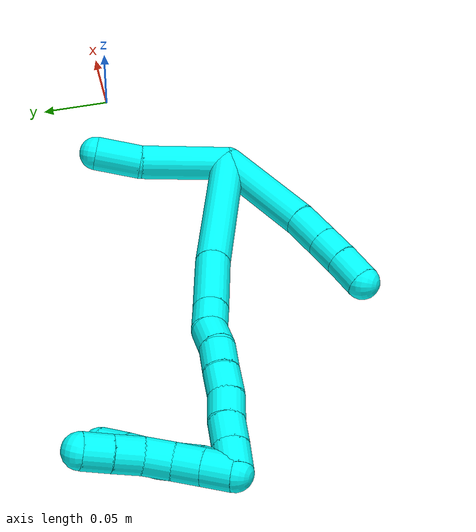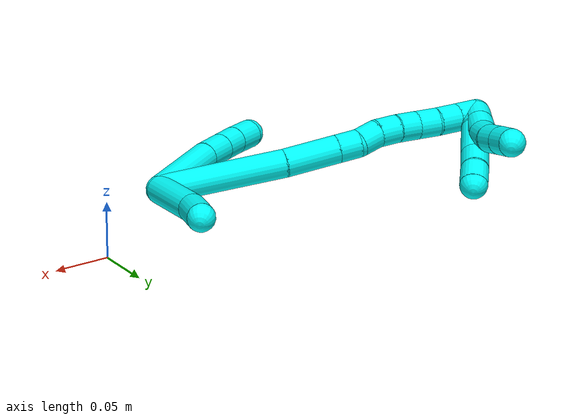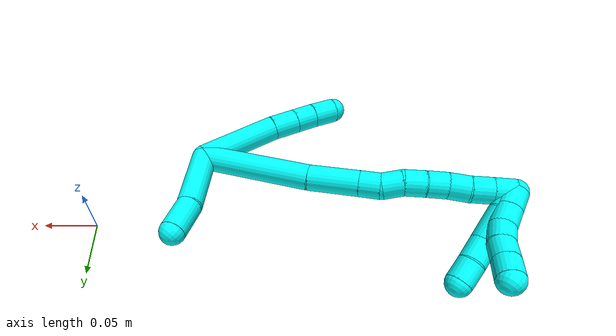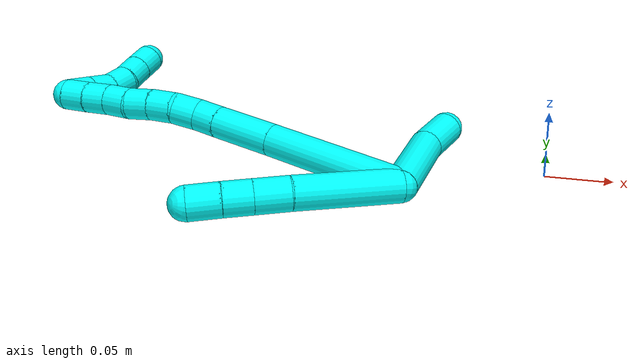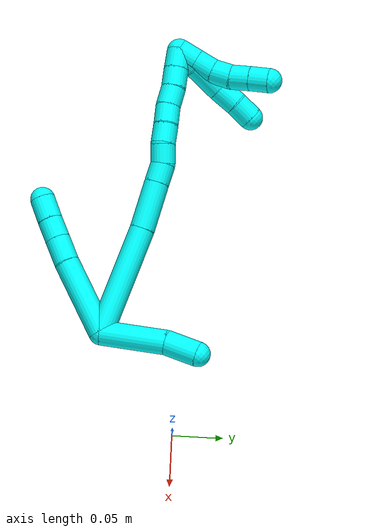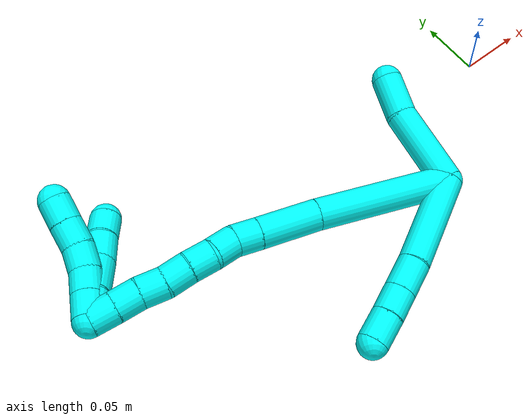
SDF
<sdf version="1.7">
 <world name="default">
  <model name="3">
   <static>0</static>
   <link name="3">
    <collision name="collision-cylinder-e_1_2_8">
     <pose>-0.01582 -0.005065 0.035793 0.140569 -0.412529 -0.029459</pose>
     <geometry><cylinder><radius>0.0125</radius><length>0.078919</length></cylinder></geometry>
     <surface>
      <friction><ode><mu>1.16</mu><mu2>1.16</mu2><slip1>0</slip1><slip2>0</slip2></ode></friction>
      <contact><ode><kp>1e+06</kp><kd>1</kd><max_vel>0</max_vel><min_depth>0.001</min_depth></ode></contact>
     </surface>
    </collision>
    <visual name="visual-cylinder-e_1_2_8">
     <pose>-0.01582 -0.005065 0.035793 0.140569 -0.412529 -0.029459</pose>
     <geometry><cylinder><radius>0.0125</radius><length>0.078919</length></cylinder></geometry>
     <material><ambient>0.003922 1 0.996078 1</ambient></material>
    </visual>
    <collision name="collision-cylinder-e_2_8_9">
     <pose>-0.037803 -0.01228 0.08279 0.189602 -0.495248 -0.048069</pose>
     <geometry><cylinder><radius>0.0125</radius><length>0.025934</length></cylinder></geometry>
     <surface>
      <friction><ode><mu>1.16</mu><mu2>1.16</mu2><slip1>0</slip1><slip2>0</slip2></ode></friction>
      <contact><ode><kp>1e+06</kp><kd>1</kd><max_vel>0</max_vel><min_depth>0.001</min_depth></ode></contact>
     </surface>
    </collision>
    <visual name="visual-cylinder-e_2_8_9">
     <pose>-0.037803 -0.01228 0.08279 0.189602 -0.495248 -0.048069</pose>
     <geometry><cylinder><radius>0.0125</radius><length>0.025934</length></cylinder></geometry>
     <material><ambient>0.003922 1 0.996078 1</ambient></material>
    </visual>
    <collision name="collision-cylinder-e_3_9_10">
     <pose>-0.049012 -0.016181 0.103159 0.188781 -0.495754 -0.04791</pose>
     <geometry><cylinder><radius>0.0125</radius><length>0.021215</length></cylinder></geometry>
     <surface>
      <friction><ode><mu>1.16</mu><mu2>1.16</mu2><slip1>0</slip1><slip2>0</slip2></ode></friction>
      <contact><ode><kp>1e+06</kp><kd>1</kd><max_vel>0</max_vel><min_depth>0.001</min_depth></ode></contact>
     </surface>
    </collision>
    <visual name="visual-cylinder-e_3_9_10">
     <pose>-0.049012 -0.016181 0.103159 0.188781 -0.495754 -0.04791</pose>
     <geometry><cylinder><radius>0.0125</radius><length>0.021215</length></cylinder></geometry>
     <material><ambient>0.003922 1 0.996078 1</ambient></material>
    </visual>
    <collision name="collision-cylinder-e_4_10_6">
     <pose>-0.060108 -0.020162 0.122403 0.217789 -0.530161 -0.05934</pose>
     <geometry><cylinder><radius>0.0125</radius><length>0.023933</length></cylinder></geometry>
     <surface>
      <friction><ode><mu>1.16</mu><mu2>1.16</mu2><slip1>0</slip1><slip2>0</slip2></ode></friction>
      <contact><ode><kp>1e+06</kp><kd>1</kd><max_vel>0</max_vel><min_depth>0.001</min_depth></ode></contact>
     </surface>
    </collision>
    <visual name="visual-cylinder-e_4_10_6">
     <pose>-0.060108 -0.020162 0.122403 0.217789 -0.530161 -0.05934</pose>
     <geometry><cylinder><radius>0.0125</radius><length>0.023933</length></cylinder></geometry>
     <material><ambient>0.003922 1 0.996078 1</ambient></material>
    </visual>
    <collision name="collision-cylinder-e_1_2_11">
     <pose>-0.015951 0.011433 -0.026572 -2.73528 -0.503921 1.79187</pose>
     <geometry><cylinder><radius>0.0125</radius><length>0.066068</length></cylinder></geometry>
     <surface>
      <friction><ode><mu>1.16</mu><mu2>1.16</mu2><slip1>0</slip1><slip2>0</slip2></ode></friction>
      <contact><ode><kp>1e+06</kp><kd>1</kd><max_vel>0</max_vel><min_depth>0.001</min_depth></ode></contact>
     </surface>
    </collision>
    <visual name="visual-cylinder-e_1_2_11">
     <pose>-0.015951 0.011433 -0.026572 -2.73528 -0.503921 1.79187</pose>
     <geometry><cylinder><radius>0.0125</radius><length>0.066068</length></cylinder></geometry>
     <material><ambient>0.003922 1 0.996078 1</ambient></material>
    </visual>
    <collision name="collision-cylinder-e_2_11_5">
     <pose>-0.036719 0.029251 -0.068108 -2.73827 -0.287882 1.23344</pose>
     <geometry><cylinder><radius>0.0125</radius><length>0.033932</length></cylinder></geometry>
     <surface>
      <friction><ode><mu>1.16</mu><mu2>1.16</mu2><slip1>0</slip1><slip2>0</slip2></ode></friction>
      <contact><ode><kp>1e+06</kp><kd>1</kd><max_vel>0</max_vel><min_depth>0.001</min_depth></ode></contact>
     </surface>
    </collision>
    <visual name="visual-cylinder-e_2_11_5">
     <pose>-0.036719 0.029251 -0.068108 -2.73827 -0.287882 1.23344</pose>
     <geometry><cylinder><radius>0.0125</radius><length>0.033932</length></cylinder></geometry>
     <material><ambient>0.003922 1 0.996078 1</ambient></material>
    </visual>
    <collision name="collision-cylinder-e_1_2_12">
     <pose>-0.051444 0.00751 0.019549 -0.36679 -1.1842 0.248226</pose>
     <geometry><cylinder><radius>0.0125</radius><length>0.111087</length></cylinder></geometry>
     <surface>
      <friction><ode><mu>1.16</mu><mu2>1.16</mu2><slip1>0</slip1><slip2>0</slip2></ode></friction>
      <contact><ode><kp>1e+06</kp><kd>1</kd><max_vel>0</max_vel><min_depth>0.001</min_depth></ode></contact>
     </surface>
    </collision>
    <visual name="visual-cylinder-e_1_2_12">
     <pose>-0.051444 0.00751 0.019549 -0.36679 -1.1842 0.248226</pose>
     <geometry><cylinder><radius>0.0125</radius><length>0.111087</length></cylinder></geometry>
     <material><ambient>0.003922 1 0.996078 1</ambient></material>
    </visual>
    <collision name="collision-cylinder-e_2_12_13">
     <pose>-0.124676 0.018533 0.049399 -0.328638 -1.10751 0.204327</pose>
     <geometry><cylinder><radius>0.0125</radius><length>0.04871</length></cylinder></geometry>
     <surface>
      <friction><ode><mu>1.16</mu><mu2>1.16</mu2><slip1>0</slip1><slip2>0</slip2></ode></friction>
      <contact><ode><kp>1e+06</kp><kd>1</kd><max_vel>0</max_vel><min_depth>0.001</min_depth></ode></contact>
     </surface>
    </collision>
    <visual name="visual-cylinder-e_2_12_13">
     <pose>-0.124676 0.018533 0.049399 -0.328638 -1.10751 0.204327</pose>
     <geometry><cylinder><radius>0.0125</radius><length>0.04871</length></cylinder></geometry>
     <material><ambient>0.003922 1 0.996078 1</ambient></material>
    </visual>
    <collision name="collision-cylinder-e_3_13_14">
     <pose>-0.155517 0.023563 0.063846 -0.350898 -1.11717 0.220683</pose>
     <geometry><cylinder><radius>0.0125</radius><length>0.020145</length></cylinder></geometry>
     <surface>
      <friction><ode><mu>1.16</mu><mu2>1.16</mu2><slip1>0</slip1><slip2>0</slip2></ode></friction>
      <contact><ode><kp>1e+06</kp><kd>1</kd><max_vel>0</max_vel><min_depth>0.001</min_depth></ode></contact>
     </surface>
    </collision>
    <visual name="visual-cylinder-e_3_13_14">
     <pose>-0.155517 0.023563 0.063846 -0.350898 -1.11717 0.220683</pose>
     <geometry><cylinder><radius>0.0125</radius><length>0.020145</length></cylinder></geometry>
     <material><ambient>0.003922 1 0.996078 1</ambient></material>
    </visual>
    <collision name="collision-cylinder-e_4_14_15">
     <pose>-0.171782 0.026615 0.074748 -0.22335 -0.80529 0.095453</pose>
     <geometry><cylinder><radius>0.0125</radius><length>0.020001</length></cylinder></geometry>
     <surface>
      <friction><ode><mu>1.16</mu><mu2>1.16</mu2><slip1>0</slip1><slip2>0</slip2></ode></friction>
      <contact><ode><kp>1e+06</kp><kd>1</kd><max_vel>0</max_vel><min_depth>0.001</min_depth></ode></contact>
     </surface>
    </collision>
    <visual name="visual-cylinder-e_4_14_15">
     <pose>-0.171782 0.026615 0.074748 -0.22335 -0.80529 0.095453</pose>
     <geometry><cylinder><radius>0.0125</radius><length>0.020001</length></cylinder></geometry>
     <material><ambient>0.003922 1 0.996078 1</ambient></material>
    </visual>
    <collision name="collision-cylinder-e_5_15_16">
     <pose>-0.187435 0.02825 0.086907 -0.018397 -1.0015 0.010068</pose>
     <geometry><cylinder><radius>0.0125</radius><length>0.020047</length></cylinder></geometry>
     <surface>
      <friction><ode><mu>1.16</mu><mu2>1.16</mu2><slip1>0</slip1><slip2>0</slip2></ode></friction>
      <contact><ode><kp>1e+06</kp><kd>1</kd><max_vel>0</max_vel><min_depth>0.001</min_depth></ode></contact>
     </surface>
    </collision>
    <visual name="visual-cylinder-e_5_15_16">
     <pose>-0.187435 0.02825 0.086907 -0.018397 -1.0015 0.010068</pose>
     <geometry><cylinder><radius>0.0125</radius><length>0.020047</length></cylinder></geometry>
     <material><ambient>0.003922 1 0.996078 1</ambient></material>
    </visual>
    <collision name="collision-cylinder-e_6_16_17">
     <pose>-0.20417 0.027521 0.097841 0.148644 -0.977415 -0.079143</pose>
     <geometry><cylinder><radius>0.0125</radius><length>0.020005</length></cylinder></geometry>
     <surface>
      <friction><ode><mu>1.16</mu><mu2>1.16</mu2><slip1>0</slip1><slip2>0</slip2></ode></friction>
      <contact><ode><kp>1e+06</kp><kd>1</kd><max_vel>0</max_vel><min_depth>0.001</min_depth></ode></contact>
     </surface>
    </collision>
    <visual name="visual-cylinder-e_6_16_17">
     <pose>-0.20417 0.027521 0.097841 0.148644 -0.977415 -0.079143</pose>
     <geometry><cylinder><radius>0.0125</radius><length>0.020005</length></cylinder></geometry>
     <material><ambient>0.003922 1 0.996078 1</ambient></material>
    </visual>
    <collision name="collision-cylinder-e_7_17_18">
     <pose>-0.221507 0.026952 0.107634 -0.060714 -1.12974 0.038485</pose>
     <geometry><cylinder><radius>0.0125</radius><length>0.020004</length></cylinder></geometry>
     <surface>
      <friction><ode><mu>1.16</mu><mu2>1.16</mu2><slip1>0</slip1><slip2>0</slip2></ode></friction>
      <contact><ode><kp>1e+06</kp><kd>1</kd><max_vel>0</max_vel><min_depth>0.001</min_depth></ode></contact>
     </surface>
    </collision>
    <visual name="visual-cylinder-e_7_17_18">
     <pose>-0.221507 0.026952 0.107634 -0.060714 -1.12974 0.038485</pose>
     <geometry><cylinder><radius>0.0125</radius><length>0.020004</length></cylinder></geometry>
     <material><ambient>0.003922 1 0.996078 1</ambient></material>
    </visual>
    <collision name="collision-cylinder-e_8_18_19">
     <pose>-0.238962 0.026982 0.117303 0.042301 -0.998933 -0.023082</pose>
     <geometry><cylinder><radius>0.0125</radius><length>0.020002</length></cylinder></geometry>
     <surface>
      <friction><ode><mu>1.16</mu><mu2>1.16</mu2><slip1>0</slip1><slip2>0</slip2></ode></friction>
      <contact><ode><kp>1e+06</kp><kd>1</kd><max_vel>0</max_vel><min_depth>0.001</min_depth></ode></contact>
     </surface>
    </collision>
    <visual name="visual-cylinder-e_8_18_19">
     <pose>-0.238962 0.026982 0.117303 0.042301 -0.998933 -0.023082</pose>
     <geometry><cylinder><radius>0.0125</radius><length>0.020002</length></cylinder></geometry>
     <material><ambient>0.003922 1 0.996078 1</ambient></material>
    </visual>
    <collision name="collision-cylinder-e_9_19_1">
     <pose>-0.255898 0.026716 0.127935 0.006987 -1.02112 -0.003913</pose>
     <geometry><cylinder><radius>0.0125</radius><length>0.020001</length></cylinder></geometry>
     <surface>
      <friction><ode><mu>1.16</mu><mu2>1.16</mu2><slip1>0</slip1><slip2>0</slip2></ode></friction>
      <contact><ode><kp>1e+06</kp><kd>1</kd><max_vel>0</max_vel><min_depth>0.001</min_depth></ode></contact>
     </surface>
    </collision>
    <visual name="visual-cylinder-e_9_19_1">
     <pose>-0.255898 0.026716 0.127935 0.006987 -1.02112 -0.003913</pose>
     <geometry><cylinder><radius>0.0125</radius><length>0.020001</length></cylinder></geometry>
     <material><ambient>0.003922 1 0.996078 1</ambient></material>
    </visual>
    <collision name="collision-cylinder-e_1_1_20">
     <pose>-0.266049 0.0281 0.123395 -2.99713 -0.163057 1.69206</pose>
     <geometry><cylinder><radius>0.0125</radius><length>0.02</length></cylinder></geometry>
     <surface>
      <friction><ode><mu>1.16</mu><mu2>1.16</mu2><slip1>0</slip1><slip2>0</slip2></ode></friction>
      <contact><ode><kp>1e+06</kp><kd>1</kd><max_vel>0</max_vel><min_depth>0.001</min_depth></ode></contact>
     </surface>
    </collision>
    <visual name="visual-cylinder-e_1_1_20">
     <pose>-0.266049 0.0281 0.123395 -2.99713 -0.163057 1.69206</pose>
     <geometry><cylinder><radius>0.0125</radius><length>0.02</length></cylinder></geometry>
     <material><ambient>0.003922 1 0.996078 1</ambient></material>
    </visual>
    <collision name="collision-cylinder-e_2_20_21">
     <pose>-0.269306 0.030912 0.103863 -3.00015 -0.164099 1.71942</pose>
     <geometry><cylinder><radius>0.0125</radius><length>0.02</length></cylinder></geometry>
     <surface>
      <friction><ode><mu>1.16</mu><mu2>1.16</mu2><slip1>0</slip1><slip2>0</slip2></ode></friction>
      <contact><ode><kp>1e+06</kp><kd>1</kd><max_vel>0</max_vel><min_depth>0.001</min_depth></ode></contact>
     </surface>
    </collision>
    <visual name="visual-cylinder-e_2_20_21">
     <pose>-0.269306 0.030912 0.103863 -3.00015 -0.164099 1.71942</pose>
     <geometry><cylinder><radius>0.0125</radius><length>0.02</length></cylinder></geometry>
     <material><ambient>0.003922 1 0.996078 1</ambient></material>
    </visual>
    <collision name="collision-cylinder-e_3_21_22">
     <pose>-0.273977 0.036163 0.085385 -2.72441 -0.308627 1.2675</pose>
     <geometry><cylinder><radius>0.0125</radius><length>0.02</length></cylinder></geometry>
     <surface>
      <friction><ode><mu>1.16</mu><mu2>1.16</mu2><slip1>0</slip1><slip2>0</slip2></ode></friction>
      <contact><ode><kp>1e+06</kp><kd>1</kd><max_vel>0</max_vel><min_depth>0.001</min_depth></ode></contact>
     </surface>
    </collision>
    <visual name="visual-cylinder-e_3_21_22">
     <pose>-0.273977 0.036163 0.085385 -2.72441 -0.308627 1.2675</pose>
     <geometry><cylinder><radius>0.0125</radius><length>0.02</length></cylinder></geometry>
     <material><ambient>0.003922 1 0.996078 1</ambient></material>
    </visual>
    <collision name="collision-cylinder-e_4_22_23">
     <pose>-0.28156 0.044724 0.069109 -2.58566 -0.471794 1.4001</pose>
     <geometry><cylinder><radius>0.0125</radius><length>0.02</length></cylinder></geometry>
     <surface>
      <friction><ode><mu>1.16</mu><mu2>1.16</mu2><slip1>0</slip1><slip2>0</slip2></ode></friction>
      <contact><ode><kp>1e+06</kp><kd>1</kd><max_vel>0</max_vel><min_depth>0.001</min_depth></ode></contact>
     </surface>
    </collision>
    <visual name="visual-cylinder-e_4_22_23">
     <pose>-0.28156 0.044724 0.069109 -2.58566 -0.471794 1.4001</pose>
     <geometry><cylinder><radius>0.0125</radius><length>0.02</length></cylinder></geometry>
     <material><ambient>0.003922 1 0.996078 1</ambient></material>
    </visual>
    <collision name="collision-cylinder-e_5_23_4">
     <pose>-0.290477 0.054071 0.053843 -2.59864 -0.452557 1.38209</pose>
     <geometry><cylinder><radius>0.0125</radius><length>0.02</length></cylinder></geometry>
     <surface>
      <friction><ode><mu>1.16</mu><mu2>1.16</mu2><slip1>0</slip1><slip2>0</slip2></ode></friction>
      <contact><ode><kp>1e+06</kp><kd>1</kd><max_vel>0</max_vel><min_depth>0.001</min_depth></ode></contact>
     </surface>
    </collision>
    <visual name="visual-cylinder-e_5_23_4">
     <pose>-0.290477 0.054071 0.053843 -2.59864 -0.452557 1.38209</pose>
     <geometry><cylinder><radius>0.0125</radius><length>0.02</length></cylinder></geometry>
     <material><ambient>0.003922 1 0.996078 1</ambient></material>
    </visual>
    <collision name="collision-cylinder-e_1_1_24">
     <pose>-0.264545 0.026334 0.121638 3.1116 -0.010373 -0.665918</pose>
     <geometry><cylinder><radius>0.0125</radius><length>0.023054</length></cylinder></geometry>
     <surface>
      <friction><ode><mu>1.16</mu><mu2>1.16</mu2><slip1>0</slip1><slip2>0</slip2></ode></friction>
      <contact><ode><kp>1e+06</kp><kd>1</kd><max_vel>0</max_vel><min_depth>0.001</min_depth></ode></contact>
     </surface>
    </collision>
    <visual name="visual-cylinder-e_1_1_24">
     <pose>-0.264545 0.026334 0.121638 3.1116 -0.010373 -0.665918</pose>
     <geometry><cylinder><radius>0.0125</radius><length>0.023054</length></cylinder></geometry>
     <material><ambient>0.003922 1 0.996078 1</ambient></material>
    </visual>
    <collision name="collision-cylinder-e_2_24_25">
     <pose>-0.265457 0.023002 0.093897 2.95951 -0.047991 -0.514158</pose>
     <geometry><cylinder><radius>0.0125</radius><length>0.033023</length></cylinder></geometry>
     <surface>
      <friction><ode><mu>1.16</mu><mu2>1.16</mu2><slip1>0</slip1><slip2>0</slip2></ode></friction>
      <contact><ode><kp>1e+06</kp><kd>1</kd><max_vel>0</max_vel><min_depth>0.001</min_depth></ode></contact>
     </surface>
    </collision>
    <visual name="visual-cylinder-e_2_24_25">
     <pose>-0.265457 0.023002 0.093897 2.95951 -0.047991 -0.514158</pose>
     <geometry><cylinder><radius>0.0125</radius><length>0.033023</length></cylinder></geometry>
     <material><ambient>0.003922 1 0.996078 1</ambient></material>
    </visual>
    <collision name="collision-cylinder-e_3_25_26">
     <pose>-0.266641 0.020495 0.066114 -3.1002 -0.033865 1.37139</pose>
     <geometry><cylinder><radius>0.0125</radius><length>0.023161</length></cylinder></geometry>
     <surface>
      <friction><ode><mu>1.16</mu><mu2>1.16</mu2><slip1>0</slip1><slip2>0</slip2></ode></friction>
      <contact><ode><kp>1e+06</kp><kd>1</kd><max_vel>0</max_vel><min_depth>0.001</min_depth></ode></contact>
     </surface>
    </collision>
    <visual name="visual-cylinder-e_3_25_26">
     <pose>-0.266641 0.020495 0.066114 -3.1002 -0.033865 1.37139</pose>
     <geometry><cylinder><radius>0.0125</radius><length>0.023161</length></cylinder></geometry>
     <material><ambient>0.003922 1 0.996078 1</ambient></material>
    </visual>
    <collision name="collision-cylinder-e_4_26_3">
     <pose>-0.267131 0.020022 0.044213 3.04974 -0.009438 -0.204645</pose>
     <geometry><cylinder><radius>0.0125</radius><length>0.020762</length></cylinder></geometry>
     <surface>
      <friction><ode><mu>1.16</mu><mu2>1.16</mu2><slip1>0</slip1><slip2>0</slip2></ode></friction>
      <contact><ode><kp>1e+06</kp><kd>1</kd><max_vel>0</max_vel><min_depth>0.001</min_depth></ode></contact>
     </surface>
    </collision>
    <visual name="visual-cylinder-e_4_26_3">
     <pose>-0.267131 0.020022 0.044213 3.04974 -0.009438 -0.204645</pose>
     <geometry><cylinder><radius>0.0125</radius><length>0.020762</length></cylinder></geometry>
     <material><ambient>0.003922 1 0.996078 1</ambient></material>
    </visual>
    <collision name="collision-sphere-3">
     <pose>-0.267229 0.019069 0.033876 0 -0 0</pose>
     <geometry><sphere><radius>0.0125</radius></sphere></geometry>
     <surface>
      <friction><ode><mu>1.16</mu><mu2>1.16</mu2><slip1>0</slip1><slip2>0</slip2></ode></friction>
      <contact><ode><kp>1e+06</kp><kd>1</kd><max_vel>0</max_vel><min_depth>0.001</min_depth></ode></contact>
     </surface>
    </collision>
    <visual name="visual-sphere-3">
     <pose>-0.267229 0.019069 0.033876 0 -0 0</pose>
     <geometry><sphere><radius>0.0125</radius></sphere></geometry>
     <material><ambient>0.003922 1 0.996078 1</ambient></material>
    </visual>
    <collision name="collision-sphere-26">
     <pose>-0.267033 0.020974 0.05455 0 -0 0</pose>
     <geometry><sphere><radius>0.0125</radius></sphere></geometry>
     <surface>
      <friction><ode><mu>1.16</mu><mu2>1.16</mu2><slip1>0</slip1><slip2>0</slip2></ode></friction>
      <contact><ode><kp>1e+06</kp><kd>1</kd><max_vel>0</max_vel><min_depth>0.001</min_depth></ode></contact>
     </surface>
    </collision>
    <visual name="visual-sphere-26">
     <pose>-0.267033 0.020974 0.05455 0 -0 0</pose>
     <geometry><sphere><radius>0.0125</radius></sphere></geometry>
     <material><ambient>0.003922 1 0.996078 1</ambient></material>
    </visual>
    <collision name="collision-sphere-25">
     <pose>-0.266249 0.020016 0.077678 0 -0 0</pose>
     <geometry><sphere><radius>0.0125</radius></sphere></geometry>
     <surface>
      <friction><ode><mu>1.16</mu><mu2>1.16</mu2><slip1>0</slip1><slip2>0</slip2></ode></friction>
      <contact><ode><kp>1e+06</kp><kd>1</kd><max_vel>0</max_vel><min_depth>0.001</min_depth></ode></contact>
     </surface>
    </collision>
    <visual name="visual-sphere-25">
     <pose>-0.266249 0.020016 0.077678 0 -0 0</pose>
     <geometry><sphere><radius>0.0125</radius></sphere></geometry>
     <material><ambient>0.003922 1 0.996078 1</ambient></material>
    </visual>
    <collision name="collision-sphere-24">
     <pose>-0.264665 0.025989 0.110117 0 -0 0</pose>
     <geometry><sphere><radius>0.0125</radius></sphere></geometry>
     <surface>
      <friction><ode><mu>1.16</mu><mu2>1.16</mu2><slip1>0</slip1><slip2>0</slip2></ode></friction>
      <contact><ode><kp>1e+06</kp><kd>1</kd><max_vel>0</max_vel><min_depth>0.001</min_depth></ode></contact>
     </surface>
    </collision>
    <visual name="visual-sphere-24">
     <pose>-0.264665 0.025989 0.110117 0 -0 0</pose>
     <geometry><sphere><radius>0.0125</radius></sphere></geometry>
     <material><ambient>0.003922 1 0.996078 1</ambient></material>
    </visual>
    <collision name="collision-sphere-4">
     <pose>-0.29485 0.058718 0.046143 0 -0 0</pose>
     <geometry><sphere><radius>0.0125</radius></sphere></geometry>
     <surface>
      <friction><ode><mu>1.16</mu><mu2>1.16</mu2><slip1>0</slip1><slip2>0</slip2></ode></friction>
      <contact><ode><kp>1e+06</kp><kd>1</kd><max_vel>0</max_vel><min_depth>0.001</min_depth></ode></contact>
     </surface>
    </collision>
    <visual name="visual-sphere-4">
     <pose>-0.29485 0.058718 0.046143 0 -0 0</pose>
     <geometry><sphere><radius>0.0125</radius></sphere></geometry>
     <material><ambient>0.003922 1 0.996078 1</ambient></material>
    </visual>
    <collision name="collision-sphere-23">
     <pose>-0.286104 0.049425 0.061543 0 -0 0</pose>
     <geometry><sphere><radius>0.0125</radius></sphere></geometry>
     <surface>
      <friction><ode><mu>1.16</mu><mu2>1.16</mu2><slip1>0</slip1><slip2>0</slip2></ode></friction>
      <contact><ode><kp>1e+06</kp><kd>1</kd><max_vel>0</max_vel><min_depth>0.001</min_depth></ode></contact>
     </surface>
    </collision>
    <visual name="visual-sphere-23">
     <pose>-0.286104 0.049425 0.061543 0 -0 0</pose>
     <geometry><sphere><radius>0.0125</radius></sphere></geometry>
     <material><ambient>0.003922 1 0.996078 1</ambient></material>
    </visual>
    <collision name="collision-sphere-22">
     <pose>-0.277015 0.040023 0.076675 0 -0 0</pose>
     <geometry><sphere><radius>0.0125</radius></sphere></geometry>
     <surface>
      <friction><ode><mu>1.16</mu><mu2>1.16</mu2><slip1>0</slip1><slip2>0</slip2></ode></friction>
      <contact><ode><kp>1e+06</kp><kd>1</kd><max_vel>0</max_vel><min_depth>0.001</min_depth></ode></contact>
     </surface>
    </collision>
    <visual name="visual-sphere-22">
     <pose>-0.277015 0.040023 0.076675 0 -0 0</pose>
     <geometry><sphere><radius>0.0125</radius></sphere></geometry>
     <material><ambient>0.003922 1 0.996078 1</ambient></material>
    </visual>
    <collision name="collision-sphere-21">
     <pose>-0.27094 0.032302 0.094096 0 -0 0</pose>
     <geometry><sphere><radius>0.0125</radius></sphere></geometry>
     <surface>
      <friction><ode><mu>1.16</mu><mu2>1.16</mu2><slip1>0</slip1><slip2>0</slip2></ode></friction>
      <contact><ode><kp>1e+06</kp><kd>1</kd><max_vel>0</max_vel><min_depth>0.001</min_depth></ode></contact>
     </surface>
    </collision>
    <visual name="visual-sphere-21">
     <pose>-0.27094 0.032302 0.094096 0 -0 0</pose>
     <geometry><sphere><radius>0.0125</radius></sphere></geometry>
     <material><ambient>0.003922 1 0.996078 1</ambient></material>
    </visual>
    <collision name="collision-sphere-20">
     <pose>-0.267672 0.029521 0.11363 0 -0 0</pose>
     <geometry><sphere><radius>0.0125</radius></sphere></geometry>
     <surface>
      <friction><ode><mu>1.16</mu><mu2>1.16</mu2><slip1>0</slip1><slip2>0</slip2></ode></friction>
      <contact><ode><kp>1e+06</kp><kd>1</kd><max_vel>0</max_vel><min_depth>0.001</min_depth></ode></contact>
     </surface>
    </collision>
    <visual name="visual-sphere-20">
     <pose>-0.267672 0.029521 0.11363 0 -0 0</pose>
     <geometry><sphere><radius>0.0125</radius></sphere></geometry>
     <material><ambient>0.003922 1 0.996078 1</ambient></material>
    </visual>
    <collision name="collision-sphere-11">
     <pose>-0.031902 0.022866 -0.053145 0 -0 0</pose>
     <geometry><sphere><radius>0.0125</radius></sphere></geometry>
     <surface>
      <friction><ode><mu>1.16</mu><mu2>1.16</mu2><slip1>0</slip1><slip2>0</slip2></ode></friction>
      <contact><ode><kp>1e+06</kp><kd>1</kd><max_vel>0</max_vel><min_depth>0.001</min_depth></ode></contact>
     </surface>
    </collision>
    <visual name="visual-sphere-11">
     <pose>-0.031902 0.022866 -0.053145 0 -0 0</pose>
     <geometry><sphere><radius>0.0125</radius></sphere></geometry>
     <material><ambient>0.003922 1 0.996078 1</ambient></material>
    </visual>
    <collision name="collision-sphere-6">
     <pose>-0.06616 -0.022393 0.132483 0 -0 0</pose>
     <geometry><sphere><radius>0.0125</radius></sphere></geometry>
     <surface>
      <friction><ode><mu>1.16</mu><mu2>1.16</mu2><slip1>0</slip1><slip2>0</slip2></ode></friction>
      <contact><ode><kp>1e+06</kp><kd>1</kd><max_vel>0</max_vel><min_depth>0.001</min_depth></ode></contact>
     </surface>
    </collision>
    <visual name="visual-sphere-6">
     <pose>-0.06616 -0.022393 0.132483 0 -0 0</pose>
     <geometry><sphere><radius>0.0125</radius></sphere></geometry>
     <material><ambient>0.003922 1 0.996078 1</ambient></material>
    </visual>
    <collision name="collision-sphere-10">
     <pose>-0.054057 -0.017932 0.112323 0 -0 0</pose>
     <geometry><sphere><radius>0.0125</radius></sphere></geometry>
     <surface>
      <friction><ode><mu>1.16</mu><mu2>1.16</mu2><slip1>0</slip1><slip2>0</slip2></ode></friction>
      <contact><ode><kp>1e+06</kp><kd>1</kd><max_vel>0</max_vel><min_depth>0.001</min_depth></ode></contact>
     </surface>
    </collision>
    <visual name="visual-sphere-10">
     <pose>-0.054057 -0.017932 0.112323 0 -0 0</pose>
     <geometry><sphere><radius>0.0125</radius></sphere></geometry>
     <material><ambient>0.003922 1 0.996078 1</ambient></material>
    </visual>
    <collision name="collision-sphere-9">
     <pose>-0.043966 -0.01443 0.093994 0 -0 0</pose>
     <geometry><sphere><radius>0.0125</radius></sphere></geometry>
     <surface>
      <friction><ode><mu>1.16</mu><mu2>1.16</mu2><slip1>0</slip1><slip2>0</slip2></ode></friction>
      <contact><ode><kp>1e+06</kp><kd>1</kd><max_vel>0</max_vel><min_depth>0.001</min_depth></ode></contact>
     </surface>
    </collision>
    <visual name="visual-sphere-9">
     <pose>-0.043966 -0.01443 0.093994 0 -0 0</pose>
     <geometry><sphere><radius>0.0125</radius></sphere></geometry>
     <material><ambient>0.003922 1 0.996078 1</ambient></material>
    </visual>
    <collision name="collision-sphere-2">
     <geometry><sphere><radius>0.0125</radius></sphere></geometry>
     <surface>
      <friction><ode><mu>1.16</mu><mu2>1.16</mu2><slip1>0</slip1><slip2>0</slip2></ode></friction>
      <contact><ode><kp>1e+06</kp><kd>1</kd><max_vel>0</max_vel><min_depth>0.001</min_depth></ode></contact>
     </surface>
    </collision>
    <visual name="visual-sphere-2">
     <geometry><sphere><radius>0.0125</radius></sphere></geometry>
     <material><ambient>0.003922 1 0.996078 1</ambient></material>
    </visual>
    <collision name="collision-sphere-19">
     <pose>-0.247371 0.026753 0.122711 0 -0 0</pose>
     <geometry><sphere><radius>0.0125</radius></sphere></geometry>
     <surface>
      <friction><ode><mu>1.16</mu><mu2>1.16</mu2><slip1>0</slip1><slip2>0</slip2></ode></friction>
      <contact><ode><kp>1e+06</kp><kd>1</kd><max_vel>0</max_vel><min_depth>0.001</min_depth></ode></contact>
     </surface>
    </collision>
    <visual name="visual-sphere-19">
     <pose>-0.247371 0.026753 0.122711 0 -0 0</pose>
     <geometry><sphere><radius>0.0125</radius></sphere></geometry>
     <material><ambient>0.003922 1 0.996078 1</ambient></material>
    </visual>
    <collision name="collision-sphere-8">
     <pose>-0.031641 -0.010129 0.071585 0 -0 0</pose>
     <geometry><sphere><radius>0.0125</radius></sphere></geometry>
     <surface>
      <friction><ode><mu>1.16</mu><mu2>1.16</mu2><slip1>0</slip1><slip2>0</slip2></ode></friction>
      <contact><ode><kp>1e+06</kp><kd>1</kd><max_vel>0</max_vel><min_depth>0.001</min_depth></ode></contact>
     </surface>
    </collision>
    <visual name="visual-sphere-8">
     <pose>-0.031641 -0.010129 0.071585 0 -0 0</pose>
     <geometry><sphere><radius>0.0125</radius></sphere></geometry>
     <material><ambient>0.003922 1 0.996078 1</ambient></material>
    </visual>
    <collision name="collision-sphere-5">
     <pose>-0.041536 0.035635 -0.08307 0 -0 0</pose>
     <geometry><sphere><radius>0.0125</radius></sphere></geometry>
     <surface>
      <friction><ode><mu>1.16</mu><mu2>1.16</mu2><slip1>0</slip1><slip2>0</slip2></ode></friction>
      <contact><ode><kp>1e+06</kp><kd>1</kd><max_vel>0</max_vel><min_depth>0.001</min_depth></ode></contact>
     </surface>
    </collision>
    <visual name="visual-sphere-5">
     <pose>-0.041536 0.035635 -0.08307 0 -0 0</pose>
     <geometry><sphere><radius>0.0125</radius></sphere></geometry>
     <material><ambient>0.003922 1 0.996078 1</ambient></material>
    </visual>
    <collision name="collision-sphere-12">
     <pose>-0.102888 0.01502 0.039098 0 -0 0</pose>
     <geometry><sphere><radius>0.0125</radius></sphere></geometry>
     <surface>
      <friction><ode><mu>1.16</mu><mu2>1.16</mu2><slip1>0</slip1><slip2>0</slip2></ode></friction>
      <contact><ode><kp>1e+06</kp><kd>1</kd><max_vel>0</max_vel><min_depth>0.001</min_depth></ode></contact>
     </surface>
    </collision>
    <visual name="visual-sphere-12">
     <pose>-0.102888 0.01502 0.039098 0 -0 0</pose>
     <geometry><sphere><radius>0.0125</radius></sphere></geometry>
     <material><ambient>0.003922 1 0.996078 1</ambient></material>
    </visual>
    <collision name="collision-sphere-13">
     <pose>-0.146463 0.022046 0.0597 0 -0 0</pose>
     <geometry><sphere><radius>0.0125</radius></sphere></geometry>
     <surface>
      <friction><ode><mu>1.16</mu><mu2>1.16</mu2><slip1>0</slip1><slip2>0</slip2></ode></friction>
      <contact><ode><kp>1e+06</kp><kd>1</kd><max_vel>0</max_vel><min_depth>0.001</min_depth></ode></contact>
     </surface>
    </collision>
    <visual name="visual-sphere-13">
     <pose>-0.146463 0.022046 0.0597 0 -0 0</pose>
     <geometry><sphere><radius>0.0125</radius></sphere></geometry>
     <material><ambient>0.003922 1 0.996078 1</ambient></material>
    </visual>
    <collision name="collision-sphere-14">
     <pose>-0.164571 0.025081 0.067991 0 -0 0</pose>
     <geometry><sphere><radius>0.0125</radius></sphere></geometry>
     <surface>
      <friction><ode><mu>1.16</mu><mu2>1.16</mu2><slip1>0</slip1><slip2>0</slip2></ode></friction>
      <contact><ode><kp>1e+06</kp><kd>1</kd><max_vel>0</max_vel><min_depth>0.001</min_depth></ode></contact>
     </surface>
    </collision>
    <visual name="visual-sphere-14">
     <pose>-0.164571 0.025081 0.067991 0 -0 0</pose>
     <geometry><sphere><radius>0.0125</radius></sphere></geometry>
     <material><ambient>0.003922 1 0.996078 1</ambient></material>
    </visual>
    <collision name="collision-sphere-15">
     <pose>-0.178993 0.02815 0.081505 0 -0 0</pose>
     <geometry><sphere><radius>0.0125</radius></sphere></geometry>
     <surface>
      <friction><ode><mu>1.16</mu><mu2>1.16</mu2><slip1>0</slip1><slip2>0</slip2></ode></friction>
      <contact><ode><kp>1e+06</kp><kd>1</kd><max_vel>0</max_vel><min_depth>0.001</min_depth></ode></contact>
     </surface>
    </collision>
    <visual name="visual-sphere-15">
     <pose>-0.178993 0.02815 0.081505 0 -0 0</pose>
     <geometry><sphere><radius>0.0125</radius></sphere></geometry>
     <material><ambient>0.003922 1 0.996078 1</ambient></material>
    </visual>
    <collision name="collision-sphere-16">
     <pose>-0.195877 0.028349 0.092309 0 -0 0</pose>
     <geometry><sphere><radius>0.0125</radius></sphere></geometry>
     <surface>
      <friction><ode><mu>1.16</mu><mu2>1.16</mu2><slip1>0</slip1><slip2>0</slip2></ode></friction>
      <contact><ode><kp>1e+06</kp><kd>1</kd><max_vel>0</max_vel><min_depth>0.001</min_depth></ode></contact>
     </surface>
    </collision>
    <visual name="visual-sphere-16">
     <pose>-0.195877 0.028349 0.092309 0 -0 0</pose>
     <geometry><sphere><radius>0.0125</radius></sphere></geometry>
     <material><ambient>0.003922 1 0.996078 1</ambient></material>
    </visual>
    <collision name="collision-sphere-17">
     <pose>-0.212462 0.026692 0.103372 0 -0 0</pose>
     <geometry><sphere><radius>0.0125</radius></sphere></geometry>
     <surface>
      <friction><ode><mu>1.16</mu><mu2>1.16</mu2><slip1>0</slip1><slip2>0</slip2></ode></friction>
      <contact><ode><kp>1e+06</kp><kd>1</kd><max_vel>0</max_vel><min_depth>0.001</min_depth></ode></contact>
     </surface>
    </collision>
    <visual name="visual-sphere-17">
     <pose>-0.212462 0.026692 0.103372 0 -0 0</pose>
     <geometry><sphere><radius>0.0125</radius></sphere></geometry>
     <material><ambient>0.003922 1 0.996078 1</ambient></material>
    </visual>
    <collision name="collision-sphere-18">
     <pose>-0.230552 0.027211 0.111896 0 -0 0</pose>
     <geometry><sphere><radius>0.0125</radius></sphere></geometry>
     <surface>
      <friction><ode><mu>1.16</mu><mu2>1.16</mu2><slip1>0</slip1><slip2>0</slip2></ode></friction>
      <contact><ode><kp>1e+06</kp><kd>1</kd><max_vel>0</max_vel><min_depth>0.001</min_depth></ode></contact>
     </surface>
    </collision>
    <visual name="visual-sphere-18">
     <pose>-0.230552 0.027211 0.111896 0 -0 0</pose>
     <geometry><sphere><radius>0.0125</radius></sphere></geometry>
     <material><ambient>0.003922 1 0.996078 1</ambient></material>
    </visual>
    <collision name="collision-sphere-1">
     <pose>-0.264426 0.02668 0.133159 0 -0 0</pose>
     <geometry><sphere><radius>0.0125</radius></sphere></geometry>
     <surface>
      <friction><ode><mu>1.16</mu><mu2>1.16</mu2><slip1>0</slip1><slip2>0</slip2></ode></friction>
      <contact><ode><kp>1e+06</kp><kd>1</kd><max_vel>0</max_vel><min_depth>0.001</min_depth></ode></contact>
     </surface>
    </collision>
    <visual name="visual-sphere-1">
     <pose>-0.264426 0.02668 0.133159 0 -0 0</pose>
     <geometry><sphere><radius>0.0125</radius></sphere></geometry>
     <material><ambient>0.003922 1 0.996078 1</ambient></material>
    </visual>
    <inertial>
     <pose>-0.135664 0.015753 0.054941 0 -0 0</pose>
     <mass>0.75</mass>
     <inertia>
      <ixx>0.000114</ixx>
      <ixy>0</ixy>
      <ixz>0</ixz>
      <iyy>0.000239</iyy>
      <iyz>0</iyz>
      <izz>0.000142</izz>
     </inertia>
    </inertial>
   </link>
   <pose>-0.097637 -0.075102 0.012412 1.35598 -0.099469 -0.651188</pose>
  </model>
 </world>
</sdf>
